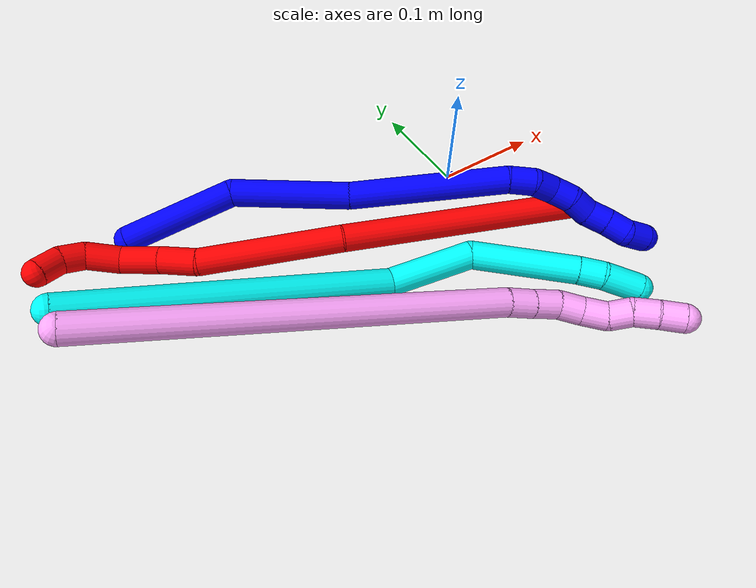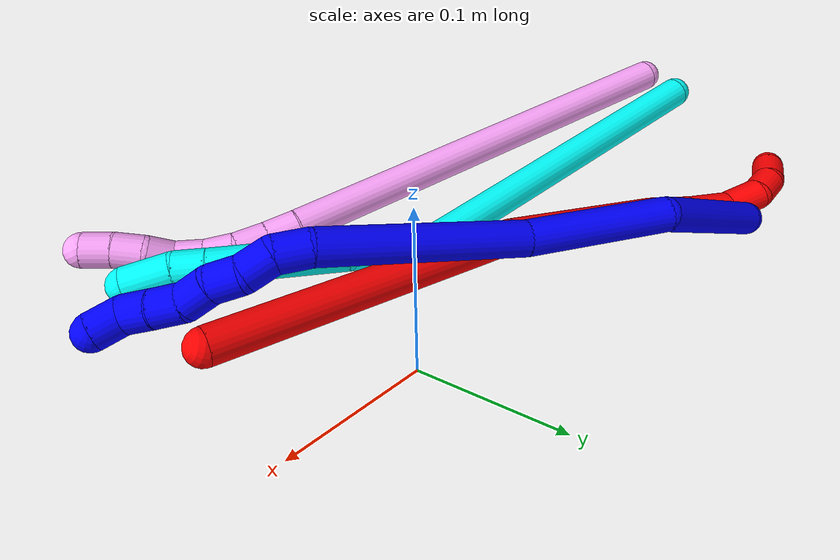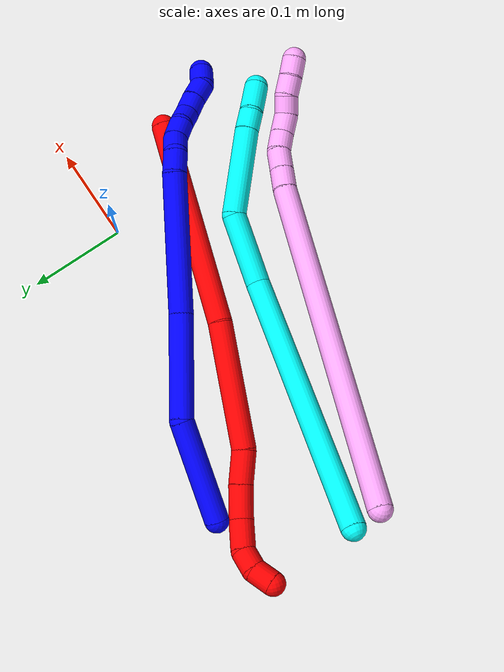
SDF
<sdf version="1.7">
 <world name="default">
  <plugin name="TubeGeneratorPlugin" filename="libtube_generator_plugin.so"/>
  <model name="photoneo_s_sensor">
   <static>1</static>
   <pose>0 0 2 1.57079 1.57079 3.14159</pose>
   <link name="link">
    <inertial><mass>0.1</mass></inertial>
    <sensor name="sensor" type="depth">
     <update_rate>30</update_rate>
     <camera>
      <horizontal_fov>1.22</horizontal_fov>
      <image><width>1920</width><height>1200</height><format>B8G8R8</format></image>
      <clip><near>0.1</near><far>4</far></clip>
      <depth_camera><output>points</output></depth_camera>
     </camera>
     <plugin name="camera_plugin" filename="libgazebo_ros_depth_camera.so">
      <baseline>0.2</baseline>
      <alwaysOn>1</alwaysOn>
      <updateRate>0.0</updateRate>
      <cameraName>camera_ir</cameraName>
      <imageTopicName>/camera/color/image_raw</imageTopicName>
      <cameraInfoTopicName>/camera/color/camera_info</cameraInfoTopicName>
      <depthImageTopicName>/camera/depth/image_raw</depthImageTopicName>
      <depthImageCameraInfoTopicName>/camera/depth/camera_info</depthImageCameraInfoTopicName>
      <pointCloudTopicName>/camera/depth/points</pointCloudTopicName>
      <frameName>fr_optical</frameName>
      <pointCloudCutoff>0.1</pointCloudCutoff>
      <pointCloudCutoffMax>2.0</pointCloudCutoffMax>
      <distortionK1>0</distortionK1>
      <distortionK2>0</distortionK2>
      <distortionK3>0</distortionK3>
      <distortionT1>0</distortionT1>
      <distortionT2>0</distortionT2>
      <CxPrime>0</CxPrime>
      <Cx>0</Cx>
      <Cy>0</Cy>
      <focalLength>0</focalLength>
      <hackBaseline>0</hackBaseline>
     </plugin>
    </sensor>
   </link>
  </model>
  <gravity>0 0 -9.8</gravity>
  <magnetic_field>6e-06 2.3e-05 -4.2e-05</magnetic_field>
  <atmosphere type="adiabatic"/>
  <physics name="default_physics" default="0" type="ode">
   <max_step_size>0.003</max_step_size>
   <real_time_factor>1</real_time_factor>
   <real_time_update_rate>1000</real_time_update_rate>
   <max_contacts>10000</max_contacts>
   <ode>
    <solver>
     <type>quick</type>
     <iters>100</iters>
     <sor>1.3</sor>
     <use_dynamic_moi_rescaling>0</use_dynamic_moi_rescaling>
    </solver>
    <constraints>
     <contact_max_correcting_vel>0</contact_max_correcting_vel>
     <contact_surface_layer>0.001</contact_surface_layer>
     <cfm>0</cfm>
     <erp>0.2</erp>
    </constraints>
   </ode>
  </physics>
  <scene><ambient>0.4 0.4 0.4 1</ambient><background>0.7 0.7 0.7 1</background><shadows>0</shadows></scene>
  <audio><device>default</device></audio>
  <spherical_coordinates>
   <surface_model>EARTH_WGS84</surface_model>
   <latitude_deg>0</latitude_deg>
   <longitude_deg>0</longitude_deg>
   <elevation>0</elevation>
   <heading_deg>0</heading_deg>
  </spherical_coordinates>
  <model name="bin">
   <static>1</static>
   <link name="bottom">
    <collision name="collision-bottom">
     <pose>0 0 -0.01 0 -0 0</pose>
     <geometry><box><size>0.8 0.6 0.02</size></box></geometry>
     <surface>
      <friction><ode><mu>100</mu><mu2>100</mu2></ode></friction>
      <contact><collide_bitmask>65535</collide_bitmask></contact>
     </surface>
    </collision>
   </link>
   <link name="west_wall">
    <collision name="collision-west_wall">
     <pose>-0.41 0 0.1 0 -0 0</pose>
     <geometry><box><size>0.02 0.6 0.2</size></box></geometry>
     <surface>
      <friction><ode><mu>100</mu><mu2>100</mu2></ode></friction>
      <contact><collide_bitmask>65535</collide_bitmask></contact>
     </surface>
    </collision>
   </link>
   <link name="east_wall">
    <collision name="collision-east_wall">
     <pose>0.41 0 0.1 0 -0 0</pose>
     <geometry><box><size>0.02 0.6 0.2</size></box></geometry>
     <surface>
      <friction><ode><mu>100</mu><mu2>100</mu2></ode></friction>
      <contact><collide_bitmask>65535</collide_bitmask></contact>
     </surface>
    </collision>
   </link>
   <link name="south_wall">
    <collision name="collision-south_wall">
     <pose>0 -0.31 0.1 0 -0 0</pose>
     <geometry><box><size>0.8 0.02 0.2</size></box></geometry>
     <surface>
      <friction><ode><mu>100</mu><mu2>100</mu2></ode></friction>
      <contact><collide_bitmask>65535</collide_bitmask></contact>
     </surface>
    </collision>
   </link>
   <link name="north_wall">
    <collision name="collision-north_wall">
     <pose>0 0.31 0.1 0 -0 0</pose>
     <geometry><box><size>0.8 0.02 0.2</size></box></geometry>
     <surface>
      <friction><ode><mu>100</mu><mu2>100</mu2></ode></friction>
      <contact><collide_bitmask>65535</collide_bitmask></contact>
     </surface>
    </collision>
   </link>
  </model>
  <model name="1">
   <static>0</static>
   <link name="1">
    <collision name="collision-cylinder-e_1_1_4">
     <pose>0.0507 -0.006522 0.012891 0.468362 1.29321 0.356337</pose>
     <geometry><cylinder><radius>0.0125</radius><length>0.105436</length></cylinder></geometry>
     <surface>
      <friction><ode><mu>1.16</mu><mu2>1.16</mu2><slip1>0</slip1><slip2>0</slip2></ode></friction>
      <contact><ode><kp>1e+06</kp><kd>1</kd><max_vel>0</max_vel><min_depth>0.001</min_depth></ode></contact>
     </surface>
    </collision>
    <visual name="visual-cylinder-e_1_1_4">
     <pose>0.0507 -0.006522 0.012891 0.468362 1.29321 0.356337</pose>
     <geometry><cylinder><radius>0.0125</radius><length>0.105436</length></cylinder></geometry>
     <material><ambient>0 0 1 1</ambient></material>
    </visual>
    <collision name="collision-cylinder-e_2_4_5">
     <pose>0.153513 -0.020988 0.015384 2.48914 1.32478 2.32305</pose>
     <geometry><cylinder><radius>0.0125</radius><length>0.107462</length></cylinder></geometry>
     <surface>
      <friction><ode><mu>1.16</mu><mu2>1.16</mu2><slip1>0</slip1><slip2>0</slip2></ode></friction>
      <contact><ode><kp>1e+06</kp><kd>1</kd><max_vel>0</max_vel><min_depth>0.001</min_depth></ode></contact>
     </surface>
    </collision>
    <visual name="visual-cylinder-e_2_4_5">
     <pose>0.153513 -0.020988 0.015384 2.48914 1.32478 2.32305</pose>
     <geometry><cylinder><radius>0.0125</radius><length>0.107462</length></cylinder></geometry>
     <material><ambient>0 0 1 1</ambient></material>
    </visual>
    <collision name="collision-cylinder-e_3_5_6">
     <pose>0.275446 -0.044961 0.000259 1.8576 1.33587 1.62448</pose>
     <geometry><cylinder><radius>0.0125</radius><length>0.143583</length></cylinder></geometry>
     <surface>
      <friction><ode><mu>1.16</mu><mu2>1.16</mu2><slip1>0</slip1><slip2>0</slip2></ode></friction>
      <contact><ode><kp>1e+06</kp><kd>1</kd><max_vel>0</max_vel><min_depth>0.001</min_depth></ode></contact>
     </surface>
    </collision>
    <visual name="visual-cylinder-e_3_5_6">
     <pose>0.275446 -0.044961 0.000259 1.8576 1.33587 1.62448</pose>
     <geometry><cylinder><radius>0.0125</radius><length>0.143583</length></cylinder></geometry>
     <material><ambient>0 0 1 1</ambient></material>
    </visual>
    <collision name="collision-cylinder-e_4_6_7">
     <pose>0.35625 -0.062619 -0.007438 2.63962 1.27163 2.47291</pose>
     <geometry><cylinder><radius>0.0125</radius><length>0.022991</length></cylinder></geometry>
     <surface>
      <friction><ode><mu>1.16</mu><mu2>1.16</mu2><slip1>0</slip1><slip2>0</slip2></ode></friction>
      <contact><ode><kp>1e+06</kp><kd>1</kd><max_vel>0</max_vel><min_depth>0.001</min_depth></ode></contact>
     </surface>
    </collision>
    <visual name="visual-cylinder-e_4_6_7">
     <pose>0.35625 -0.062619 -0.007438 2.63962 1.27163 2.47291</pose>
     <geometry><cylinder><radius>0.0125</radius><length>0.022991</length></cylinder></geometry>
     <material><ambient>0 0 1 1</ambient></material>
    </visual>
    <collision name="collision-cylinder-e_5_7_8">
     <pose>0.376026 -0.062266 -0.01525 -2.75286 1.03397 -2.47497</pose>
     <geometry><cylinder><radius>0.0125</radius><length>0.020461</length></cylinder></geometry>
     <surface>
      <friction><ode><mu>1.16</mu><mu2>1.16</mu2><slip1>0</slip1><slip2>0</slip2></ode></friction>
      <contact><ode><kp>1e+06</kp><kd>1</kd><max_vel>0</max_vel><min_depth>0.001</min_depth></ode></contact>
     </surface>
    </collision>
    <visual name="visual-cylinder-e_5_7_8">
     <pose>0.376026 -0.062266 -0.01525 -2.75286 1.03397 -2.47497</pose>
     <geometry><cylinder><radius>0.0125</radius><length>0.020461</length></cylinder></geometry>
     <material><ambient>0 0 1 1</ambient></material>
    </visual>
    <collision name="collision-cylinder-e_6_8_9">
     <pose>0.392888 -0.061679 -0.025858 2.90416 0.93692 2.67863</pose>
     <geometry><cylinder><radius>0.0125</radius><length>0.020034</length></cylinder></geometry>
     <surface>
      <friction><ode><mu>1.16</mu><mu2>1.16</mu2><slip1>0</slip1><slip2>0</slip2></ode></friction>
      <contact><ode><kp>1e+06</kp><kd>1</kd><max_vel>0</max_vel><min_depth>0.001</min_depth></ode></contact>
     </surface>
    </collision>
    <visual name="visual-cylinder-e_6_8_9">
     <pose>0.392888 -0.061679 -0.025858 2.90416 0.93692 2.67863</pose>
     <geometry><cylinder><radius>0.0125</radius><length>0.020034</length></cylinder></geometry>
     <material><ambient>0 0 1 1</ambient></material>
    </visual>
    <collision name="collision-cylinder-e_7_9_10">
     <pose>0.40767 -0.06218 -0.038985 -3.02075 0.735588 -2.83014</pose>
     <geometry><cylinder><radius>0.0125</radius><length>0.020003</length></cylinder></geometry>
     <surface>
      <friction><ode><mu>1.16</mu><mu2>1.16</mu2><slip1>0</slip1><slip2>0</slip2></ode></friction>
      <contact><ode><kp>1e+06</kp><kd>1</kd><max_vel>0</max_vel><min_depth>0.001</min_depth></ode></contact>
     </surface>
    </collision>
    <visual name="visual-cylinder-e_7_9_10">
     <pose>0.40767 -0.06218 -0.038985 -3.02075 0.735588 -2.83014</pose>
     <geometry><cylinder><radius>0.0125</radius><length>0.020003</length></cylinder></geometry>
     <material><ambient>0 0 1 1</ambient></material>
    </visual>
    <collision name="collision-cylinder-e_8_10_11">
     <pose>0.422257 -0.063575 -0.052074 2.76137 0.906416 2.389</pose>
     <geometry><cylinder><radius>0.0125</radius><length>0.020006</length></cylinder></geometry>
     <surface>
      <friction><ode><mu>1.16</mu><mu2>1.16</mu2><slip1>0</slip1><slip2>0</slip2></ode></friction>
      <contact><ode><kp>1e+06</kp><kd>1</kd><max_vel>0</max_vel><min_depth>0.001</min_depth></ode></contact>
     </surface>
    </collision>
    <visual name="visual-cylinder-e_8_10_11">
     <pose>0.422257 -0.063575 -0.052074 2.76137 0.906416 2.389</pose>
     <geometry><cylinder><radius>0.0125</radius><length>0.020006</length></cylinder></geometry>
     <material><ambient>0 0 1 1</ambient></material>
    </visual>
    <collision name="collision-cylinder-e_9_11_12">
     <pose>0.43739 -0.068575 -0.064137 2.73725 0.811233 2.25093</pose>
     <geometry><cylinder><radius>0.0125</radius><length>0.020018</length></cylinder></geometry>
     <surface>
      <friction><ode><mu>1.16</mu><mu2>1.16</mu2><slip1>0</slip1><slip2>0</slip2></ode></friction>
      <contact><ode><kp>1e+06</kp><kd>1</kd><max_vel>0</max_vel><min_depth>0.001</min_depth></ode></contact>
     </surface>
    </collision>
    <visual name="visual-cylinder-e_9_11_12">
     <pose>0.43739 -0.068575 -0.064137 2.73725 0.811233 2.25093</pose>
     <geometry><cylinder><radius>0.0125</radius><length>0.020018</length></cylinder></geometry>
     <material><ambient>0 0 1 1</ambient></material>
    </visual>
    <collision name="collision-cylinder-e_10_12_2">
     <pose>0.453715 -0.069837 -0.074444 -2.79156 1.13458 -2.60017</pose>
     <geometry><cylinder><radius>0.0125</radius><length>0.020008</length></cylinder></geometry>
     <surface>
      <friction><ode><mu>1.16</mu><mu2>1.16</mu2><slip1>0</slip1><slip2>0</slip2></ode></friction>
      <contact><ode><kp>1e+06</kp><kd>1</kd><max_vel>0</max_vel><min_depth>0.001</min_depth></ode></contact>
     </surface>
    </collision>
    <visual name="visual-cylinder-e_10_12_2">
     <pose>0.453715 -0.069837 -0.074444 -2.79156 1.13458 -2.60017</pose>
     <geometry><cylinder><radius>0.0125</radius><length>0.020008</length></cylinder></geometry>
     <material><ambient>0 0 1 1</ambient></material>
    </visual>
    <collision name="collision-sphere-2">
     <pose>0.462782 -0.068388 -0.078414 0 -0 0</pose>
     <geometry><sphere><radius>0.0125</radius></sphere></geometry>
     <surface>
      <friction><ode><mu>1.16</mu><mu2>1.16</mu2><slip1>0</slip1><slip2>0</slip2></ode></friction>
      <contact><ode><kp>1e+06</kp><kd>1</kd><max_vel>0</max_vel><min_depth>0.001</min_depth></ode></contact>
     </surface>
    </collision>
    <visual name="visual-sphere-2">
     <pose>0.462782 -0.068388 -0.078414 0 -0 0</pose>
     <geometry><sphere><radius>0.0125</radius></sphere></geometry>
     <material><ambient>0 0 1 1</ambient></material>
    </visual>
    <collision name="collision-sphere-12">
     <pose>0.444648 -0.071287 -0.070474 0 -0 0</pose>
     <geometry><sphere><radius>0.0125</radius></sphere></geometry>
     <surface>
      <friction><ode><mu>1.16</mu><mu2>1.16</mu2><slip1>0</slip1><slip2>0</slip2></ode></friction>
      <contact><ode><kp>1e+06</kp><kd>1</kd><max_vel>0</max_vel><min_depth>0.001</min_depth></ode></contact>
     </surface>
    </collision>
    <visual name="visual-sphere-12">
     <pose>0.444648 -0.071287 -0.070474 0 -0 0</pose>
     <geometry><sphere><radius>0.0125</radius></sphere></geometry>
     <material><ambient>0 0 1 1</ambient></material>
    </visual>
    <collision name="collision-sphere-11">
     <pose>0.430132 -0.065864 -0.057801 0 -0 0</pose>
     <geometry><sphere><radius>0.0125</radius></sphere></geometry>
     <surface>
      <friction><ode><mu>1.16</mu><mu2>1.16</mu2><slip1>0</slip1><slip2>0</slip2></ode></friction>
      <contact><ode><kp>1e+06</kp><kd>1</kd><max_vel>0</max_vel><min_depth>0.001</min_depth></ode></contact>
     </surface>
    </collision>
    <visual name="visual-sphere-11">
     <pose>0.430132 -0.065864 -0.057801 0 -0 0</pose>
     <geometry><sphere><radius>0.0125</radius></sphere></geometry>
     <material><ambient>0 0 1 1</ambient></material>
    </visual>
    <collision name="collision-sphere-10">
     <pose>0.414381 -0.061286 -0.046346 0 -0 0</pose>
     <geometry><sphere><radius>0.0125</radius></sphere></geometry>
     <surface>
      <friction><ode><mu>1.16</mu><mu2>1.16</mu2><slip1>0</slip1><slip2>0</slip2></ode></friction>
      <contact><ode><kp>1e+06</kp><kd>1</kd><max_vel>0</max_vel><min_depth>0.001</min_depth></ode></contact>
     </surface>
    </collision>
    <visual name="visual-sphere-10">
     <pose>0.414381 -0.061286 -0.046346 0 -0 0</pose>
     <geometry><sphere><radius>0.0125</radius></sphere></geometry>
     <material><ambient>0 0 1 1</ambient></material>
    </visual>
    <collision name="collision-sphere-9">
     <pose>0.400959 -0.063074 -0.031624 0 -0 0</pose>
     <geometry><sphere><radius>0.0125</radius></sphere></geometry>
     <surface>
      <friction><ode><mu>1.16</mu><mu2>1.16</mu2><slip1>0</slip1><slip2>0</slip2></ode></friction>
      <contact><ode><kp>1e+06</kp><kd>1</kd><max_vel>0</max_vel><min_depth>0.001</min_depth></ode></contact>
     </surface>
    </collision>
    <visual name="visual-sphere-9">
     <pose>0.400959 -0.063074 -0.031624 0 -0 0</pose>
     <geometry><sphere><radius>0.0125</radius></sphere></geometry>
     <material><ambient>0 0 1 1</ambient></material>
    </visual>
    <collision name="collision-sphere-4">
     <pose>0.1014 -0.013043 0.025782 0 -0 0</pose>
     <geometry><sphere><radius>0.0125</radius></sphere></geometry>
     <surface>
      <friction><ode><mu>1.16</mu><mu2>1.16</mu2><slip1>0</slip1><slip2>0</slip2></ode></friction>
      <contact><ode><kp>1e+06</kp><kd>1</kd><max_vel>0</max_vel><min_depth>0.001</min_depth></ode></contact>
     </surface>
    </collision>
    <visual name="visual-sphere-4">
     <pose>0.1014 -0.013043 0.025782 0 -0 0</pose>
     <geometry><sphere><radius>0.0125</radius></sphere></geometry>
     <material><ambient>0 0 1 1</ambient></material>
    </visual>
    <collision name="collision-sphere-1">
     <geometry><sphere><radius>0.0125</radius></sphere></geometry>
     <surface>
      <friction><ode><mu>1.16</mu><mu2>1.16</mu2><slip1>0</slip1><slip2>0</slip2></ode></friction>
      <contact><ode><kp>1e+06</kp><kd>1</kd><max_vel>0</max_vel><min_depth>0.001</min_depth></ode></contact>
     </surface>
    </collision>
    <visual name="visual-sphere-1">
     <geometry><sphere><radius>0.0125</radius></sphere></geometry>
     <material><ambient>0 0 1 1</ambient></material>
    </visual>
    <collision name="collision-sphere-8">
     <pose>0.384817 -0.060283 -0.020091 0 -0 0</pose>
     <geometry><sphere><radius>0.0125</radius></sphere></geometry>
     <surface>
      <friction><ode><mu>1.16</mu><mu2>1.16</mu2><slip1>0</slip1><slip2>0</slip2></ode></friction>
      <contact><ode><kp>1e+06</kp><kd>1</kd><max_vel>0</max_vel><min_depth>0.001</min_depth></ode></contact>
     </surface>
    </collision>
    <visual name="visual-sphere-8">
     <pose>0.384817 -0.060283 -0.020091 0 -0 0</pose>
     <geometry><sphere><radius>0.0125</radius></sphere></geometry>
     <material><ambient>0 0 1 1</ambient></material>
    </visual>
    <collision name="collision-sphere-5">
     <pose>0.205626 -0.028933 0.004986 0 -0 0</pose>
     <geometry><sphere><radius>0.0125</radius></sphere></geometry>
     <surface>
      <friction><ode><mu>1.16</mu><mu2>1.16</mu2><slip1>0</slip1><slip2>0</slip2></ode></friction>
      <contact><ode><kp>1e+06</kp><kd>1</kd><max_vel>0</max_vel><min_depth>0.001</min_depth></ode></contact>
     </surface>
    </collision>
    <visual name="visual-sphere-5">
     <pose>0.205626 -0.028933 0.004986 0 -0 0</pose>
     <geometry><sphere><radius>0.0125</radius></sphere></geometry>
     <material><ambient>0 0 1 1</ambient></material>
    </visual>
    <collision name="collision-sphere-6">
     <pose>0.345265 -0.060989 -0.004468 0 -0 0</pose>
     <geometry><sphere><radius>0.0125</radius></sphere></geometry>
     <surface>
      <friction><ode><mu>1.16</mu><mu2>1.16</mu2><slip1>0</slip1><slip2>0</slip2></ode></friction>
      <contact><ode><kp>1e+06</kp><kd>1</kd><max_vel>0</max_vel><min_depth>0.001</min_depth></ode></contact>
     </surface>
    </collision>
    <visual name="visual-sphere-6">
     <pose>0.345265 -0.060989 -0.004468 0 -0 0</pose>
     <geometry><sphere><radius>0.0125</radius></sphere></geometry>
     <material><ambient>0 0 1 1</ambient></material>
    </visual>
    <collision name="collision-sphere-7">
     <pose>0.367235 -0.064249 -0.010408 0 -0 0</pose>
     <geometry><sphere><radius>0.0125</radius></sphere></geometry>
     <surface>
      <friction><ode><mu>1.16</mu><mu2>1.16</mu2><slip1>0</slip1><slip2>0</slip2></ode></friction>
      <contact><ode><kp>1e+06</kp><kd>1</kd><max_vel>0</max_vel><min_depth>0.001</min_depth></ode></contact>
     </surface>
    </collision>
    <visual name="visual-sphere-7">
     <pose>0.367235 -0.064249 -0.010408 0 -0 0</pose>
     <geometry><sphere><radius>0.0125</radius></sphere></geometry>
     <material><ambient>0 0 1 1</ambient></material>
    </visual>
    <inertial>
     <pose>0.239165 -0.037267 -0.005093 0 -0 0</pose>
     <mass>0.5</mass>
     <inertia>
      <ixx>0.000125</ixx>
      <ixy>0</ixy>
      <ixz>0</ixz>
      <iyy>0.000537</iyy>
      <iyz>0</iyz>
      <izz>-0.000377</izz>
     </inertia>
    </inertial>
   </link>
   <pose>-0.306793 0.07986 0.012295 -0.770037 -0.017411 -0.332634</pose>
  </model>
  <model name="2">
   <static>0</static>
   <link name="2">
    <collision name="collision-cylinder-e_1_1_4">
     <pose>-0.031069 0.037359 0.100721 -0.355185 -0.281528 0.050855</pose>
     <geometry><cylinder><radius>0.0125</radius><length>0.223657</length></cylinder></geometry>
     <surface>
      <friction><ode><mu>1.16</mu><mu2>1.16</mu2><slip1>0</slip1><slip2>0</slip2></ode></friction>
      <contact><ode><kp>1e+06</kp><kd>1</kd><max_vel>0</max_vel><min_depth>0.001</min_depth></ode></contact>
     </surface>
    </collision>
    <visual name="visual-cylinder-e_1_1_4">
     <pose>-0.031069 0.037359 0.100721 -0.355185 -0.281528 0.050855</pose>
     <geometry><cylinder><radius>0.0125</radius><length>0.223657</length></cylinder></geometry>
     <material><ambient>1 0 0 1</ambient></material>
    </visual>
    <collision name="collision-cylinder-e_2_4_5">
     <pose>-0.078924 0.086754 0.263332 -0.192083 -0.26021 0.025209</pose>
     <geometry><cylinder><radius>0.0125</radius><length>0.130492</length></cylinder></geometry>
     <surface>
      <friction><ode><mu>1.16</mu><mu2>1.16</mu2><slip1>0</slip1><slip2>0</slip2></ode></friction>
      <contact><ode><kp>1e+06</kp><kd>1</kd><max_vel>0</max_vel><min_depth>0.001</min_depth></ode></contact>
     </surface>
    </collision>
    <visual name="visual-cylinder-e_2_4_5">
     <pose>-0.078924 0.086754 0.263332 -0.192083 -0.26021 0.025209</pose>
     <geometry><cylinder><radius>0.0125</radius><length>0.130492</length></cylinder></geometry>
     <material><ambient>1 0 0 1</ambient></material>
    </visual>
    <collision name="collision-cylinder-e_3_5_6">
     <pose>-0.103402 0.098628 0.340691 0.010482 -0.461382 -0.002462</pose>
     <geometry><cylinder><radius>0.0125</radius><length>0.034554</length></cylinder></geometry>
     <surface>
      <friction><ode><mu>1.16</mu><mu2>1.16</mu2><slip1>0</slip1><slip2>0</slip2></ode></friction>
      <contact><ode><kp>1e+06</kp><kd>1</kd><max_vel>0</max_vel><min_depth>0.001</min_depth></ode></contact>
     </surface>
    </collision>
    <visual name="visual-cylinder-e_3_5_6">
     <pose>-0.103402 0.098628 0.340691 0.010482 -0.461382 -0.002462</pose>
     <geometry><cylinder><radius>0.0125</radius><length>0.034554</length></cylinder></geometry>
     <material><ambient>1 0 0 1</ambient></material>
    </visual>
    <collision name="collision-cylinder-e_4_6_7">
     <pose>-0.118224 0.10003 0.372141 -0.097549 -0.417934 0.020702</pose>
     <geometry><cylinder><radius>0.0125</radius><length>0.035137</length></cylinder></geometry>
     <surface>
      <friction><ode><mu>1.16</mu><mu2>1.16</mu2><slip1>0</slip1><slip2>0</slip2></ode></friction>
      <contact><ode><kp>1e+06</kp><kd>1</kd><max_vel>0</max_vel><min_depth>0.001</min_depth></ode></contact>
     </surface>
    </collision>
    <visual name="visual-cylinder-e_4_6_7">
     <pose>-0.118224 0.10003 0.372141 -0.097549 -0.417934 0.020702</pose>
     <geometry><cylinder><radius>0.0125</radius><length>0.035137</length></cylinder></geometry>
     <material><ambient>1 0 0 1</ambient></material>
    </visual>
    <collision name="collision-cylinder-e_5_7_8">
     <pose>-0.133611 0.106249 0.400726 -0.353736 -0.550942 0.100956</pose>
     <geometry><cylinder><radius>0.0125</radius><length>0.031542</length></cylinder></geometry>
     <surface>
      <friction><ode><mu>1.16</mu><mu2>1.16</mu2><slip1>0</slip1><slip2>0</slip2></ode></friction>
      <contact><ode><kp>1e+06</kp><kd>1</kd><max_vel>0</max_vel><min_depth>0.001</min_depth></ode></contact>
     </surface>
    </collision>
    <visual name="visual-cylinder-e_5_7_8">
     <pose>-0.133611 0.106249 0.400726 -0.353736 -0.550942 0.100956</pose>
     <geometry><cylinder><radius>0.0125</radius><length>0.031542</length></cylinder></geometry>
     <material><ambient>1 0 0 1</ambient></material>
    </visual>
    <collision name="collision-cylinder-e_6_8_9">
     <pose>-0.144263 0.117588 0.421503 -0.685659 -0.223185 0.07995</pose>
     <geometry><cylinder><radius>0.0125</radius><length>0.021651</length></cylinder></geometry>
     <surface>
      <friction><ode><mu>1.16</mu><mu2>1.16</mu2><slip1>0</slip1><slip2>0</slip2></ode></friction>
      <contact><ode><kp>1e+06</kp><kd>1</kd><max_vel>0</max_vel><min_depth>0.001</min_depth></ode></contact>
     </surface>
    </collision>
    <visual name="visual-cylinder-e_6_8_9">
     <pose>-0.144263 0.117588 0.421503 -0.685659 -0.223185 0.07995</pose>
     <geometry><cylinder><radius>0.0125</radius><length>0.021651</length></cylinder></geometry>
     <material><ambient>1 0 0 1</ambient></material>
    </visual>
    <collision name="collision-cylinder-e_7_9_2">
     <pose>-0.145117 0.133277 0.436632 -0.912918 0.134677 -0.066208</pose>
     <geometry><cylinder><radius>0.0125</radius><length>0.022967</length></cylinder></geometry>
     <surface>
      <friction><ode><mu>1.16</mu><mu2>1.16</mu2><slip1>0</slip1><slip2>0</slip2></ode></friction>
      <contact><ode><kp>1e+06</kp><kd>1</kd><max_vel>0</max_vel><min_depth>0.001</min_depth></ode></contact>
     </surface>
    </collision>
    <visual name="visual-cylinder-e_7_9_2">
     <pose>-0.145117 0.133277 0.436632 -0.912918 0.134677 -0.066208</pose>
     <geometry><cylinder><radius>0.0125</radius><length>0.022967</length></cylinder></geometry>
     <material><ambient>1 0 0 1</ambient></material>
    </visual>
    <collision name="collision-sphere-2">
     <pose>-0.143575 0.142281 0.44359 0 -0 0</pose>
     <geometry><sphere><radius>0.0125</radius></sphere></geometry>
     <surface>
      <friction><ode><mu>1.16</mu><mu2>1.16</mu2><slip1>0</slip1><slip2>0</slip2></ode></friction>
      <contact><ode><kp>1e+06</kp><kd>1</kd><max_vel>0</max_vel><min_depth>0.001</min_depth></ode></contact>
     </surface>
    </collision>
    <visual name="visual-sphere-2">
     <pose>-0.143575 0.142281 0.44359 0 -0 0</pose>
     <geometry><sphere><radius>0.0125</radius></sphere></geometry>
     <material><ambient>1 0 0 1</ambient></material>
    </visual>
    <collision name="collision-sphere-9">
     <pose>-0.146659 0.124272 0.429674 0 -0 0</pose>
     <geometry><sphere><radius>0.0125</radius></sphere></geometry>
     <surface>
      <friction><ode><mu>1.16</mu><mu2>1.16</mu2><slip1>0</slip1><slip2>0</slip2></ode></friction>
      <contact><ode><kp>1e+06</kp><kd>1</kd><max_vel>0</max_vel><min_depth>0.001</min_depth></ode></contact>
     </surface>
    </collision>
    <visual name="visual-sphere-9">
     <pose>-0.146659 0.124272 0.429674 0 -0 0</pose>
     <geometry><sphere><radius>0.0125</radius></sphere></geometry>
     <material><ambient>1 0 0 1</ambient></material>
    </visual>
    <collision name="collision-sphere-4">
     <pose>-0.062137 0.074718 0.201441 0 -0 0</pose>
     <geometry><sphere><radius>0.0125</radius></sphere></geometry>
     <surface>
      <friction><ode><mu>1.16</mu><mu2>1.16</mu2><slip1>0</slip1><slip2>0</slip2></ode></friction>
      <contact><ode><kp>1e+06</kp><kd>1</kd><max_vel>0</max_vel><min_depth>0.001</min_depth></ode></contact>
     </surface>
    </collision>
    <visual name="visual-sphere-4">
     <pose>-0.062137 0.074718 0.201441 0 -0 0</pose>
     <geometry><sphere><radius>0.0125</radius></sphere></geometry>
     <material><ambient>1 0 0 1</ambient></material>
    </visual>
    <collision name="collision-sphere-1">
     <geometry><sphere><radius>0.0125</radius></sphere></geometry>
     <surface>
      <friction><ode><mu>1.16</mu><mu2>1.16</mu2><slip1>0</slip1><slip2>0</slip2></ode></friction>
      <contact><ode><kp>1e+06</kp><kd>1</kd><max_vel>0</max_vel><min_depth>0.001</min_depth></ode></contact>
     </surface>
    </collision>
    <visual name="visual-sphere-1">
     <geometry><sphere><radius>0.0125</radius></sphere></geometry>
     <material><ambient>1 0 0 1</ambient></material>
    </visual>
    <collision name="collision-sphere-8">
     <pose>-0.141867 0.110903 0.413332 0 -0 0</pose>
     <geometry><sphere><radius>0.0125</radius></sphere></geometry>
     <surface>
      <friction><ode><mu>1.16</mu><mu2>1.16</mu2><slip1>0</slip1><slip2>0</slip2></ode></friction>
      <contact><ode><kp>1e+06</kp><kd>1</kd><max_vel>0</max_vel><min_depth>0.001</min_depth></ode></contact>
     </surface>
    </collision>
    <visual name="visual-sphere-8">
     <pose>-0.141867 0.110903 0.413332 0 -0 0</pose>
     <geometry><sphere><radius>0.0125</radius></sphere></geometry>
     <material><ambient>1 0 0 1</ambient></material>
    </visual>
    <collision name="collision-sphere-5">
     <pose>-0.095711 0.098791 0.325222 0 -0 0</pose>
     <geometry><sphere><radius>0.0125</radius></sphere></geometry>
     <surface>
      <friction><ode><mu>1.16</mu><mu2>1.16</mu2><slip1>0</slip1><slip2>0</slip2></ode></friction>
      <contact><ode><kp>1e+06</kp><kd>1</kd><max_vel>0</max_vel><min_depth>0.001</min_depth></ode></contact>
     </surface>
    </collision>
    <visual name="visual-sphere-5">
     <pose>-0.095711 0.098791 0.325222 0 -0 0</pose>
     <geometry><sphere><radius>0.0125</radius></sphere></geometry>
     <material><ambient>1 0 0 1</ambient></material>
    </visual>
    <collision name="collision-sphere-6">
     <pose>-0.111094 0.098466 0.356161 0 -0 0</pose>
     <geometry><sphere><radius>0.0125</radius></sphere></geometry>
     <surface>
      <friction><ode><mu>1.16</mu><mu2>1.16</mu2><slip1>0</slip1><slip2>0</slip2></ode></friction>
      <contact><ode><kp>1e+06</kp><kd>1</kd><max_vel>0</max_vel><min_depth>0.001</min_depth></ode></contact>
     </surface>
    </collision>
    <visual name="visual-sphere-6">
     <pose>-0.111094 0.098466 0.356161 0 -0 0</pose>
     <geometry><sphere><radius>0.0125</radius></sphere></geometry>
     <material><ambient>1 0 0 1</ambient></material>
    </visual>
    <collision name="collision-sphere-7">
     <pose>-0.125355 0.101594 0.388121 0 -0 0</pose>
     <geometry><sphere><radius>0.0125</radius></sphere></geometry>
     <surface>
      <friction><ode><mu>1.16</mu><mu2>1.16</mu2><slip1>0</slip1><slip2>0</slip2></ode></friction>
      <contact><ode><kp>1e+06</kp><kd>1</kd><max_vel>0</max_vel><min_depth>0.001</min_depth></ode></contact>
     </surface>
    </collision>
    <visual name="visual-sphere-7">
     <pose>-0.125355 0.101594 0.388121 0 -0 0</pose>
     <geometry><sphere><radius>0.0125</radius></sphere></geometry>
     <material><ambient>1 0 0 1</ambient></material>
    </visual>
    <inertial>
     <pose>-0.071291 0.071114 0.227063 0 -0 0</pose>
     <mass>0.5</mass>
     <inertia><ixx>0.001142</ixx><ixy>0</ixy><ixz>0</ixz><iyy>0.001151</iyy><iyz>0</iyz><izz>-2e-06</izz></inertia>
    </inertial>
   </link>
   <pose>0.067792 -0.10233 0.011498 2.09053 0.69904 -1.56719</pose>
  </model>
  <model name="3">
   <static>0</static>
   <link name="3">
    <collision name="collision-cylinder-e_1_1_4">
     <pose>0.011885 -0.005373 -0.137356 3.10249 0.086249 2.29073</pose>
     <geometry><cylinder><radius>0.0125</radius><length>0.275948</length></cylinder></geometry>
     <surface>
      <friction><ode><mu>1.16</mu><mu2>1.16</mu2><slip1>0</slip1><slip2>0</slip2></ode></friction>
      <contact><ode><kp>1e+06</kp><kd>1</kd><max_vel>0</max_vel><min_depth>0.001</min_depth></ode></contact>
     </surface>
    </collision>
    <visual name="visual-cylinder-e_1_1_4">
     <pose>0.011885 -0.005373 -0.137356 3.10249 0.086249 2.29073</pose>
     <geometry><cylinder><radius>0.0125</radius><length>0.275948</length></cylinder></geometry>
     <material><ambient>0.003922 1 0.996078 1</ambient></material>
    </visual>
    <collision name="collision-cylinder-e_2_4_5">
     <pose>0.038228 -0.002928 -0.308782 -2.91603 0.392161 -2.10513</pose>
     <geometry><cylinder><radius>0.0125</radius><length>0.075655</length></cylinder></geometry>
     <surface>
      <friction><ode><mu>1.16</mu><mu2>1.16</mu2><slip1>0</slip1><slip2>0</slip2></ode></friction>
      <contact><ode><kp>1e+06</kp><kd>1</kd><max_vel>0</max_vel><min_depth>0.001</min_depth></ode></contact>
     </surface>
    </collision>
    <visual name="visual-cylinder-e_2_4_5">
     <pose>0.038228 -0.002928 -0.308782 -2.91603 0.392161 -2.10513</pose>
     <geometry><cylinder><radius>0.0125</radius><length>0.075655</length></cylinder></geometry>
     <material><ambient>0.003922 1 0.996078 1</ambient></material>
    </visual>
    <collision name="collision-cylinder-e_3_5_6">
     <pose>0.077081 -0.007507 -0.380814 2.82594 0.548398 2.1118</pose>
     <geometry><cylinder><radius>0.0125</radius><length>0.093595</length></cylinder></geometry>
     <surface>
      <friction><ode><mu>1.16</mu><mu2>1.16</mu2><slip1>0</slip1><slip2>0</slip2></ode></friction>
      <contact><ode><kp>1e+06</kp><kd>1</kd><max_vel>0</max_vel><min_depth>0.001</min_depth></ode></contact>
     </surface>
    </collision>
    <visual name="visual-cylinder-e_3_5_6">
     <pose>0.077081 -0.007507 -0.380814 2.82594 0.548398 2.1118</pose>
     <geometry><cylinder><radius>0.0125</radius><length>0.093595</length></cylinder></geometry>
     <material><ambient>0.003922 1 0.996078 1</ambient></material>
    </visual>
    <collision name="collision-cylinder-e_4_6_7">
     <pose>0.107235 -0.023514 -0.427157 2.73499 0.562892 1.90276</pose>
     <geometry><cylinder><radius>0.0125</radius><length>0.021578</length></cylinder></geometry>
     <surface>
      <friction><ode><mu>1.16</mu><mu2>1.16</mu2><slip1>0</slip1><slip2>0</slip2></ode></friction>
      <contact><ode><kp>1e+06</kp><kd>1</kd><max_vel>0</max_vel><min_depth>0.001</min_depth></ode></contact>
     </surface>
    </collision>
    <visual name="visual-cylinder-e_4_6_7">
     <pose>0.107235 -0.023514 -0.427157 2.73499 0.562892 1.90276</pose>
     <geometry><cylinder><radius>0.0125</radius><length>0.021578</length></cylinder></geometry>
     <material><ambient>0.003922 1 0.996078 1</ambient></material>
    </visual>
    <collision name="collision-cylinder-e_5_7_2">
     <pose>0.118545 -0.034204 -0.449501 2.67222 0.340776 1.24756</pose>
     <geometry><cylinder><radius>0.0125</radius><length>0.033225</length></cylinder></geometry>
     <surface>
      <friction><ode><mu>1.16</mu><mu2>1.16</mu2><slip1>0</slip1><slip2>0</slip2></ode></friction>
      <contact><ode><kp>1e+06</kp><kd>1</kd><max_vel>0</max_vel><min_depth>0.001</min_depth></ode></contact>
     </surface>
    </collision>
    <visual name="visual-cylinder-e_5_7_2">
     <pose>0.118545 -0.034204 -0.449501 2.67222 0.340776 1.24756</pose>
     <geometry><cylinder><radius>0.0125</radius><length>0.033225</length></cylinder></geometry>
     <material><ambient>0.003922 1 0.996078 1</ambient></material>
    </visual>
    <collision name="collision-sphere-2">
     <pose>0.124097 -0.041286 -0.463465 0 -0 0</pose>
     <geometry><sphere><radius>0.0125</radius></sphere></geometry>
     <surface>
      <friction><ode><mu>1.16</mu><mu2>1.16</mu2><slip1>0</slip1><slip2>0</slip2></ode></friction>
      <contact><ode><kp>1e+06</kp><kd>1</kd><max_vel>0</max_vel><min_depth>0.001</min_depth></ode></contact>
     </surface>
    </collision>
    <visual name="visual-sphere-2">
     <pose>0.124097 -0.041286 -0.463465 0 -0 0</pose>
     <geometry><sphere><radius>0.0125</radius></sphere></geometry>
     <material><ambient>0.003922 1 0.996078 1</ambient></material>
    </visual>
    <collision name="collision-sphere-7">
     <pose>0.112993 -0.027122 -0.435537 0 -0 0</pose>
     <geometry><sphere><radius>0.0125</radius></sphere></geometry>
     <surface>
      <friction><ode><mu>1.16</mu><mu2>1.16</mu2><slip1>0</slip1><slip2>0</slip2></ode></friction>
      <contact><ode><kp>1e+06</kp><kd>1</kd><max_vel>0</max_vel><min_depth>0.001</min_depth></ode></contact>
     </surface>
    </collision>
    <visual name="visual-sphere-7">
     <pose>0.112993 -0.027122 -0.435537 0 -0 0</pose>
     <geometry><sphere><radius>0.0125</radius></sphere></geometry>
     <material><ambient>0.003922 1 0.996078 1</ambient></material>
    </visual>
    <collision name="collision-sphere-6">
     <pose>0.101478 -0.019905 -0.418776 0 -0 0</pose>
     <geometry><sphere><radius>0.0125</radius></sphere></geometry>
     <surface>
      <friction><ode><mu>1.16</mu><mu2>1.16</mu2><slip1>0</slip1><slip2>0</slip2></ode></friction>
      <contact><ode><kp>1e+06</kp><kd>1</kd><max_vel>0</max_vel><min_depth>0.001</min_depth></ode></contact>
     </surface>
    </collision>
    <visual name="visual-sphere-6">
     <pose>0.101478 -0.019905 -0.418776 0 -0 0</pose>
     <geometry><sphere><radius>0.0125</radius></sphere></geometry>
     <material><ambient>0.003922 1 0.996078 1</ambient></material>
    </visual>
    <collision name="collision-sphere-5">
     <pose>0.052685 0.00489 -0.342852 0 -0 0</pose>
     <geometry><sphere><radius>0.0125</radius></sphere></geometry>
     <surface>
      <friction><ode><mu>1.16</mu><mu2>1.16</mu2><slip1>0</slip1><slip2>0</slip2></ode></friction>
      <contact><ode><kp>1e+06</kp><kd>1</kd><max_vel>0</max_vel><min_depth>0.001</min_depth></ode></contact>
     </surface>
    </collision>
    <visual name="visual-sphere-5">
     <pose>0.052685 0.00489 -0.342852 0 -0 0</pose>
     <geometry><sphere><radius>0.0125</radius></sphere></geometry>
     <material><ambient>0.003922 1 0.996078 1</ambient></material>
    </visual>
    <collision name="collision-sphere-1">
     <geometry><sphere><radius>0.0125</radius></sphere></geometry>
     <surface>
      <friction><ode><mu>1.16</mu><mu2>1.16</mu2><slip1>0</slip1><slip2>0</slip2></ode></friction>
      <contact><ode><kp>1e+06</kp><kd>1</kd><max_vel>0</max_vel><min_depth>0.001</min_depth></ode></contact>
     </surface>
    </collision>
    <visual name="visual-sphere-1">
     <geometry><sphere><radius>0.0125</radius></sphere></geometry>
     <material><ambient>0.003922 1 0.996078 1</ambient></material>
    </visual>
    <collision name="collision-sphere-4">
     <pose>0.023771 -0.010746 -0.274712 0 -0 0</pose>
     <geometry><sphere><radius>0.0125</radius></sphere></geometry>
     <surface>
      <friction><ode><mu>1.16</mu><mu2>1.16</mu2><slip1>0</slip1><slip2>0</slip2></ode></friction>
      <contact><ode><kp>1e+06</kp><kd>1</kd><max_vel>0</max_vel><min_depth>0.001</min_depth></ode></contact>
     </surface>
    </collision>
    <visual name="visual-sphere-4">
     <pose>0.023771 -0.010746 -0.274712 0 -0 0</pose>
     <geometry><sphere><radius>0.0125</radius></sphere></geometry>
     <material><ambient>0.003922 1 0.996078 1</ambient></material>
    </visual>
    <inertial>
     <pose>0.039278 -0.008101 -0.242116 0 -0 0</pose>
     <mass>0.5</mass>
     <inertia>
      <ixx>0.00015</ixx>
      <ixy>0</ixy>
      <ixz>0</ixz>
      <iyy>0.002576</iyy>
      <iyz>0</iyz>
      <izz>-0.000161</izz>
     </inertia>
    </inertial>
   </link>
   <pose>-0.388504 -0.021459 0.08178 1.11954 -0.829626 -1.39603</pose>
  </model>
  <model name="4">
   <static>0</static>
   <link name="4">
    <collision name="collision-cylinder-e_1_1_4">
     <pose>0.15699 0.072401 -0.024904 -1.90209 1.11703 -1.43852</pose>
     <geometry><cylinder><radius>0.0125</radius><length>0.349331</length></cylinder></geometry>
     <surface>
      <friction><ode><mu>1.16</mu><mu2>1.16</mu2><slip1>0</slip1><slip2>0</slip2></ode></friction>
      <contact><ode><kp>1e+06</kp><kd>1</kd><max_vel>0</max_vel><min_depth>0.001</min_depth></ode></contact>
     </surface>
    </collision>
    <visual name="visual-cylinder-e_1_1_4">
     <pose>0.15699 0.072401 -0.024904 -1.90209 1.11703 -1.43852</pose>
     <geometry><cylinder><radius>0.0125</radius><length>0.349331</length></cylinder></geometry>
     <material><ambient>1 0.65098 0.996078 1</ambient></material>
    </visual>
    <collision name="collision-cylinder-e_2_4_5">
     <pose>0.323724 0.150805 -0.051552 -1.85353 1.00048 -1.25856</pose>
     <geometry><cylinder><radius>0.0125</radius><length>0.023152</length></cylinder></geometry>
     <surface>
      <friction><ode><mu>1.16</mu><mu2>1.16</mu2><slip1>0</slip1><slip2>0</slip2></ode></friction>
      <contact><ode><kp>1e+06</kp><kd>1</kd><max_vel>0</max_vel><min_depth>0.001</min_depth></ode></contact>
     </surface>
    </collision>
    <visual name="visual-cylinder-e_2_4_5">
     <pose>0.323724 0.150805 -0.051552 -1.85353 1.00048 -1.25856</pose>
     <geometry><cylinder><radius>0.0125</radius><length>0.023152</length></cylinder></geometry>
     <material><ambient>1 0.65098 0.996078 1</ambient></material>
    </visual>
    <collision name="collision-cylinder-e_3_5_6">
     <pose>0.343257 0.162547 -0.055588 -1.9507 1.0076 -1.36605</pose>
     <geometry><cylinder><radius>0.0125</radius><length>0.023155</length></cylinder></geometry>
     <surface>
      <friction><ode><mu>1.16</mu><mu2>1.16</mu2><slip1>0</slip1><slip2>0</slip2></ode></friction>
      <contact><ode><kp>1e+06</kp><kd>1</kd><max_vel>0</max_vel><min_depth>0.001</min_depth></ode></contact>
     </surface>
    </collision>
    <visual name="visual-cylinder-e_3_5_6">
     <pose>0.343257 0.162547 -0.055588 -1.9507 1.0076 -1.36605</pose>
     <geometry><cylinder><radius>0.0125</radius><length>0.023155</length></cylinder></geometry>
     <material><ambient>1 0.65098 0.996078 1</ambient></material>
    </visual>
    <collision name="collision-cylinder-e_4_6_7">
     <pose>0.359884 0.175774 -0.060775 -1.93982 0.705475 -0.985734</pose>
     <geometry><cylinder><radius>0.0125</radius><length>0.02109</length></cylinder></geometry>
     <surface>
      <friction><ode><mu>1.16</mu><mu2>1.16</mu2><slip1>0</slip1><slip2>0</slip2></ode></friction>
      <contact><ode><kp>1e+06</kp><kd>1</kd><max_vel>0</max_vel><min_depth>0.001</min_depth></ode></contact>
     </surface>
    </collision>
    <visual name="visual-cylinder-e_4_6_7">
     <pose>0.359884 0.175774 -0.060775 -1.93982 0.705475 -0.985734</pose>
     <geometry><cylinder><radius>0.0125</radius><length>0.02109</length></cylinder></geometry>
     <material><ambient>1 0.65098 0.996078 1</ambient></material>
    </visual>
    <collision name="collision-cylinder-e_5_7_8">
     <pose>0.373366 0.190876 -0.068349 -2.1217 0.63935 -1.06885</pose>
     <geometry><cylinder><radius>0.0125</radius><length>0.022273</length></cylinder></geometry>
     <surface>
      <friction><ode><mu>1.16</mu><mu2>1.16</mu2><slip1>0</slip1><slip2>0</slip2></ode></friction>
      <contact><ode><kp>1e+06</kp><kd>1</kd><max_vel>0</max_vel><min_depth>0.001</min_depth></ode></contact>
     </surface>
    </collision>
    <visual name="visual-cylinder-e_5_7_8">
     <pose>0.373366 0.190876 -0.068349 -2.1217 0.63935 -1.06885</pose>
     <geometry><cylinder><radius>0.0125</radius><length>0.022273</length></cylinder></geometry>
     <material><ambient>1 0.65098 0.996078 1</ambient></material>
    </visual>
    <collision name="collision-cylinder-e_6_8_9">
     <pose>0.386465 0.201843 -0.079906 -2.68822 0.700694 -2.01552</pose>
     <geometry><cylinder><radius>0.0125</radius><length>0.020023</length></cylinder></geometry>
     <surface>
      <friction><ode><mu>1.16</mu><mu2>1.16</mu2><slip1>0</slip1><slip2>0</slip2></ode></friction>
      <contact><ode><kp>1e+06</kp><kd>1</kd><max_vel>0</max_vel><min_depth>0.001</min_depth></ode></contact>
     </surface>
    </collision>
    <visual name="visual-cylinder-e_6_8_9">
     <pose>0.386465 0.201843 -0.079906 -2.68822 0.700694 -2.01552</pose>
     <geometry><cylinder><radius>0.0125</radius><length>0.020023</length></cylinder></geometry>
     <material><ambient>1 0.65098 0.996078 1</ambient></material>
    </visual>
    <collision name="collision-cylinder-e_7_9_10">
     <pose>0.398637 0.211366 -0.09278 -2.34164 0.586534 -1.24049</pose>
     <geometry><cylinder><radius>0.0125</radius><length>0.02066</length></cylinder></geometry>
     <surface>
      <friction><ode><mu>1.16</mu><mu2>1.16</mu2><slip1>0</slip1><slip2>0</slip2></ode></friction>
      <contact><ode><kp>1e+06</kp><kd>1</kd><max_vel>0</max_vel><min_depth>0.001</min_depth></ode></contact>
     </surface>
    </collision>
    <visual name="visual-cylinder-e_7_9_10">
     <pose>0.398637 0.211366 -0.09278 -2.34164 0.586534 -1.24049</pose>
     <geometry><cylinder><radius>0.0125</radius><length>0.02066</length></cylinder></geometry>
     <material><ambient>1 0.65098 0.996078 1</ambient></material>
    </visual>
    <collision name="collision-cylinder-e_8_10_2">
     <pose>0.410472 0.223988 -0.10369 -2.22198 0.646203 -1.18908</pose>
     <geometry><cylinder><radius>0.0125</radius><length>0.020318</length></cylinder></geometry>
     <surface>
      <friction><ode><mu>1.16</mu><mu2>1.16</mu2><slip1>0</slip1><slip2>0</slip2></ode></friction>
      <contact><ode><kp>1e+06</kp><kd>1</kd><max_vel>0</max_vel><min_depth>0.001</min_depth></ode></contact>
     </surface>
    </collision>
    <visual name="visual-cylinder-e_8_10_2">
     <pose>0.410472 0.223988 -0.10369 -2.22198 0.646203 -1.18908</pose>
     <geometry><cylinder><radius>0.0125</radius><length>0.020318</length></cylinder></geometry>
     <material><ambient>1 0.65098 0.996078 1</ambient></material>
    </visual>
    <collision name="collision-sphere-2">
     <pose>0.416589 0.230439 -0.108606 0 -0 0</pose>
     <geometry><sphere><radius>0.0125</radius></sphere></geometry>
     <surface>
      <friction><ode><mu>1.16</mu><mu2>1.16</mu2><slip1>0</slip1><slip2>0</slip2></ode></friction>
      <contact><ode><kp>1e+06</kp><kd>1</kd><max_vel>0</max_vel><min_depth>0.001</min_depth></ode></contact>
     </surface>
    </collision>
    <visual name="visual-sphere-2">
     <pose>0.416589 0.230439 -0.108606 0 -0 0</pose>
     <geometry><sphere><radius>0.0125</radius></sphere></geometry>
     <material><ambient>1 0.65098 0.996078 1</ambient></material>
    </visual>
    <collision name="collision-sphere-10">
     <pose>0.404355 0.217537 -0.098774 0 -0 0</pose>
     <geometry><sphere><radius>0.0125</radius></sphere></geometry>
     <surface>
      <friction><ode><mu>1.16</mu><mu2>1.16</mu2><slip1>0</slip1><slip2>0</slip2></ode></friction>
      <contact><ode><kp>1e+06</kp><kd>1</kd><max_vel>0</max_vel><min_depth>0.001</min_depth></ode></contact>
     </surface>
    </collision>
    <visual name="visual-sphere-10">
     <pose>0.404355 0.217537 -0.098774 0 -0 0</pose>
     <geometry><sphere><radius>0.0125</radius></sphere></geometry>
     <material><ambient>1 0.65098 0.996078 1</ambient></material>
    </visual>
    <collision name="collision-sphere-9">
     <pose>0.39292 0.205194 -0.086786 0 -0 0</pose>
     <geometry><sphere><radius>0.0125</radius></sphere></geometry>
     <surface>
      <friction><ode><mu>1.16</mu><mu2>1.16</mu2><slip1>0</slip1><slip2>0</slip2></ode></friction>
      <contact><ode><kp>1e+06</kp><kd>1</kd><max_vel>0</max_vel><min_depth>0.001</min_depth></ode></contact>
     </surface>
    </collision>
    <visual name="visual-sphere-9">
     <pose>0.39292 0.205194 -0.086786 0 -0 0</pose>
     <geometry><sphere><radius>0.0125</radius></sphere></geometry>
     <material><ambient>1 0.65098 0.996078 1</ambient></material>
    </visual>
    <collision name="collision-sphere-4">
     <pose>0.31398 0.144803 -0.049808 0 -0 0</pose>
     <geometry><sphere><radius>0.0125</radius></sphere></geometry>
     <surface>
      <friction><ode><mu>1.16</mu><mu2>1.16</mu2><slip1>0</slip1><slip2>0</slip2></ode></friction>
      <contact><ode><kp>1e+06</kp><kd>1</kd><max_vel>0</max_vel><min_depth>0.001</min_depth></ode></contact>
     </surface>
    </collision>
    <visual name="visual-sphere-4">
     <pose>0.31398 0.144803 -0.049808 0 -0 0</pose>
     <geometry><sphere><radius>0.0125</radius></sphere></geometry>
     <material><ambient>1 0.65098 0.996078 1</ambient></material>
    </visual>
    <collision name="collision-sphere-1">
     <geometry><sphere><radius>0.0125</radius></sphere></geometry>
     <surface>
      <friction><ode><mu>1.16</mu><mu2>1.16</mu2><slip1>0</slip1><slip2>0</slip2></ode></friction>
      <contact><ode><kp>1e+06</kp><kd>1</kd><max_vel>0</max_vel><min_depth>0.001</min_depth></ode></contact>
     </surface>
    </collision>
    <visual name="visual-sphere-1">
     <geometry><sphere><radius>0.0125</radius></sphere></geometry>
     <material><ambient>1 0.65098 0.996078 1</ambient></material>
    </visual>
    <collision name="collision-sphere-8">
     <pose>0.38001 0.198491 -0.073027 0 -0 0</pose>
     <geometry><sphere><radius>0.0125</radius></sphere></geometry>
     <surface>
      <friction><ode><mu>1.16</mu><mu2>1.16</mu2><slip1>0</slip1><slip2>0</slip2></ode></friction>
      <contact><ode><kp>1e+06</kp><kd>1</kd><max_vel>0</max_vel><min_depth>0.001</min_depth></ode></contact>
     </surface>
    </collision>
    <visual name="visual-sphere-8">
     <pose>0.38001 0.198491 -0.073027 0 -0 0</pose>
     <geometry><sphere><radius>0.0125</radius></sphere></geometry>
     <material><ambient>1 0.65098 0.996078 1</ambient></material>
    </visual>
    <collision name="collision-sphere-5">
     <pose>0.333468 0.156806 -0.053295 0 -0 0</pose>
     <geometry><sphere><radius>0.0125</radius></sphere></geometry>
     <surface>
      <friction><ode><mu>1.16</mu><mu2>1.16</mu2><slip1>0</slip1><slip2>0</slip2></ode></friction>
      <contact><ode><kp>1e+06</kp><kd>1</kd><max_vel>0</max_vel><min_depth>0.001</min_depth></ode></contact>
     </surface>
    </collision>
    <visual name="visual-sphere-5">
     <pose>0.333468 0.156806 -0.053295 0 -0 0</pose>
     <geometry><sphere><radius>0.0125</radius></sphere></geometry>
     <material><ambient>1 0.65098 0.996078 1</ambient></material>
    </visual>
    <collision name="collision-sphere-6">
     <pose>0.353046 0.168287 -0.05788 0 -0 0</pose>
     <geometry><sphere><radius>0.0125</radius></sphere></geometry>
     <surface>
      <friction><ode><mu>1.16</mu><mu2>1.16</mu2><slip1>0</slip1><slip2>0</slip2></ode></friction>
      <contact><ode><kp>1e+06</kp><kd>1</kd><max_vel>0</max_vel><min_depth>0.001</min_depth></ode></contact>
     </surface>
    </collision>
    <visual name="visual-sphere-6">
     <pose>0.353046 0.168287 -0.05788 0 -0 0</pose>
     <geometry><sphere><radius>0.0125</radius></sphere></geometry>
     <material><ambient>1 0.65098 0.996078 1</ambient></material>
    </visual>
    <collision name="collision-sphere-7">
     <pose>0.366721 0.183262 -0.063671 0 -0 0</pose>
     <geometry><sphere><radius>0.0125</radius></sphere></geometry>
     <surface>
      <friction><ode><mu>1.16</mu><mu2>1.16</mu2><slip1>0</slip1><slip2>0</slip2></ode></friction>
      <contact><ode><kp>1e+06</kp><kd>1</kd><max_vel>0</max_vel><min_depth>0.001</min_depth></ode></contact>
     </surface>
    </collision>
    <visual name="visual-sphere-7">
     <pose>0.366721 0.183262 -0.063671 0 -0 0</pose>
     <geometry><sphere><radius>0.0125</radius></sphere></geometry>
     <material><ambient>1 0.65098 0.996078 1</ambient></material>
    </visual>
    <inertial>
     <pose>0.221007 0.106929 -0.039216 0 -0 0</pose>
     <mass>0.5</mass>
     <inertia>
      <ixx>-0.001316</ixx>
      <ixy>0</ixy>
      <ixz>0</ixz>
      <iyy>0.001317</iyy>
      <iyz>0</iyz>
      <izz>-0.004707</izz>
     </inertia>
    </inertial>
   </link>
   <pose>-0.388029 -0.051021 0.093308 -2.68471 0.158152 0.115939</pose>
  </model>
 </world>
</sdf>
